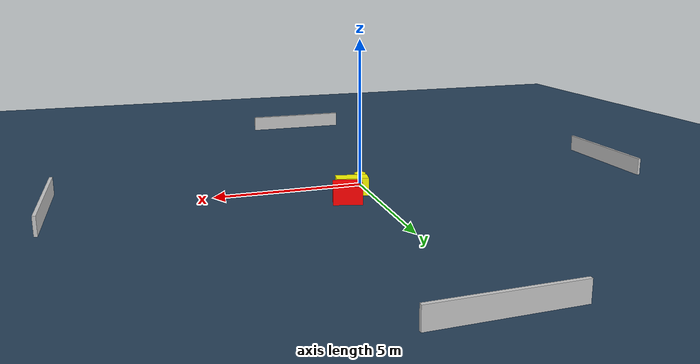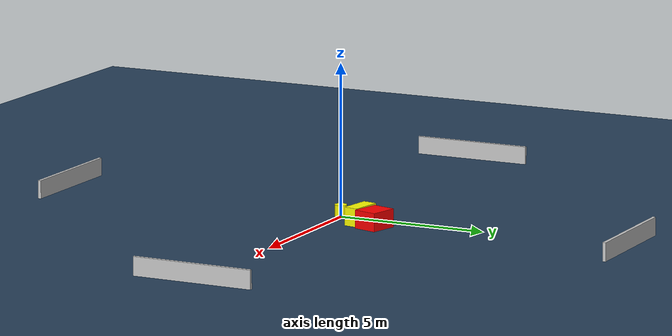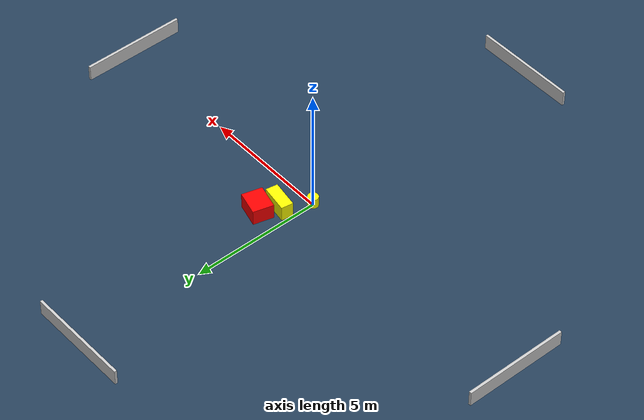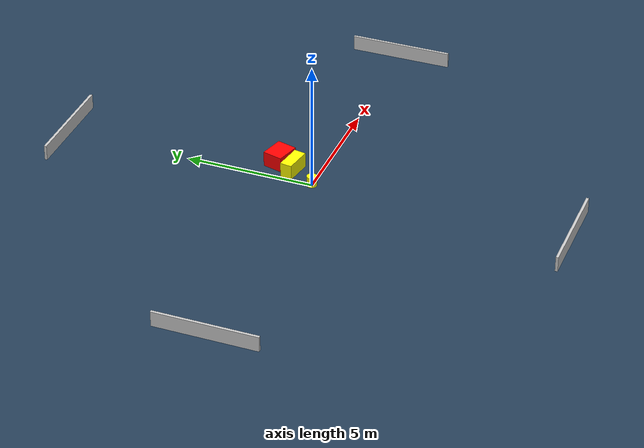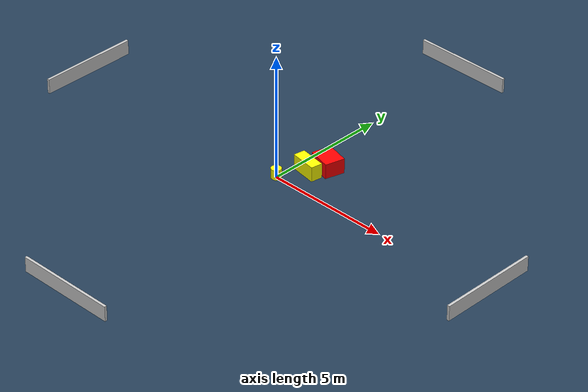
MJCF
<?xml version="1.0" ?>
<mujoco model="generated_environment">
  <option timestep="0.01" integrator="RK4" cone="elliptic"/>
  <default>
    <geom density="1"/>
  </default>
  <asset>
    <texture builtin="gradient" height="3072" name="skybox" rgb1="0.3 0.5 0.7" rgb2="0 0 0" type="skybox" width="512"/>
    <texture builtin="checker" height="300" name="groundplane" rgb1="0.2 0.3 0.4" rgb2="0.1 0.2 0.3" type="2d" width="300"/>
    <material name="groundplane" reflectance="0.2" texrepeat="5 5" texture="groundplane"/>
  </asset>
  <worldbody>
    <light dir="0 0 -1" directional="true" pos="0 0 1.5"/>
    <geom condim="3" friction="0.5 0.005 0.001" material="groundplane" name="floor" pos="0 0 0" size="0 0 0.05" type="plane"/>
    <body name="walls">
      <geom name="wall_1" condim="4" pos="-10.0 0.0 0.3" rgba="0.800000011920929 0.800000011920929 0.800000011920929 1.0" size="0.05 2.0 0.3" type="box"/>
      <geom name="wall_2" condim="4" pos="10.0 0.0 0.3" rgba="0.800000011920929 0.800000011920929 0.800000011920929 1.0" size="0.05 2.0 0.3" type="box"/>
      <geom name="wall_3" condim="4" pos="0.0 -10.0 0.3" rgba="0.800000011920929 0.800000011920929 0.800000011920929 1.0" size="2.0 0.05 0.3" type="box"/>
      <geom name="wall_4" condim="4" pos="0.0 10.0 0.3" rgba="0.800000011920929 0.800000011920929 0.800000011920929 1.0" size="2.0 0.05 0.3" type="box"/>
    </body>
    <body name="robot">
      <joint name="joint_x" type="slide" pos="0 0 0" axis="1 0 0"/>
      <joint name="joint_y" type="slide" pos="0 0 0" axis="0 1 0"/>
      <geom name="robot" type="cylinder" pos="0.0 0.0 0.2" size="0.2 0.2 0.0" mass="5.0" friction="1.0 0.005 0.0001" condim="4" rgba="1.0 1.0 0.0 1.0"/>
    </body>
    <body name="obstacle_1_movable">
      <geom name="obstacle_1_movable" condim="4" pos="0.6045420651994856 0.9923433438401766 0.3" euler="0 0 260.60730636746814" friction="0.0 0.005 0.001" rgba="1.0 1.0 0.0 1.0" size="0.2305415182110757 0.528300001227981 0.3" type="box" mass="0.1"/>
      <joint type="free"/>
    </body>
    <body name="obstacle_2_static">
      <geom name="obstacle_2_static" condim="4" pos="0.9579158379773332 1.6653935809924512 0.3" euler="0 0 165.08885104708767" friction="0.0 0.005 0.001" rgba="1.0 0.0 0.0 1.0" size="0.4737680694844066 0.3937548979982315 0.3" type="box"/>
    </body>
  </worldbody>
  <actuator>
    <motor name="actuator_x" joint="joint_x" gear="1" ctrlrange="-1 1"/>
    <motor name="actuator_y" joint="joint_y" gear="1" ctrlrange="-1 1"/>
  </actuator>
</mujoco>
